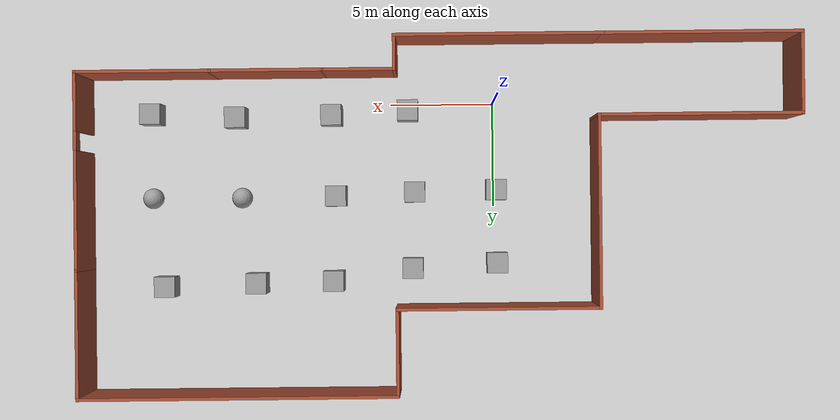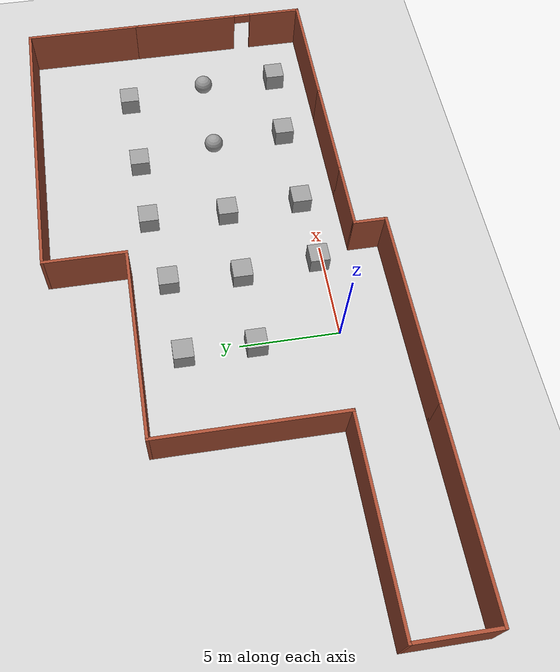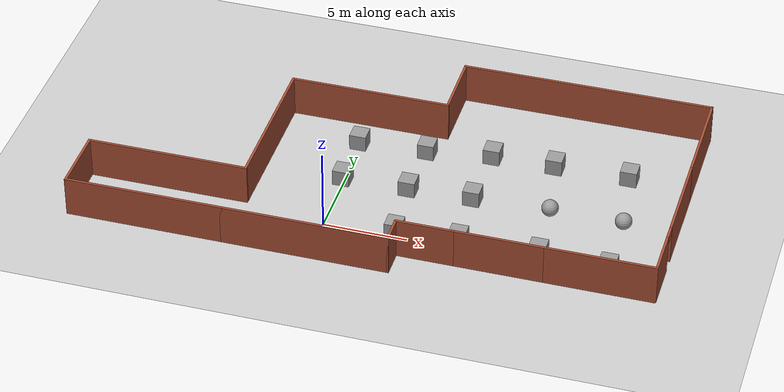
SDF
<sdf version="1.7">
 <world name="default">
  <light name="sun" type="directional">
   <pose>0 0 10 0 -0 0</pose>
   <diffuse>0.8 0.8 0.8 1</diffuse>
   <specular>0.2 0.2 0.2 1</specular>
   <attenuation>
    <range>1000</range>
    <constant>0.9</constant>
    <linear>0.01</linear>
    <quadratic>0.001</quadratic>
   </attenuation>
   <direction>-0.5 0.1 -0.9</direction>
   <spot><inner_angle>0</inner_angle><outer_angle>0</outer_angle><falloff>0</falloff></spot>
  </light>
  <model name="ground_plane">
   <static>1</static>
   <link name="link">
    <collision name="collision">
     <geometry><plane><normal>0 0 1</normal><size>100 100</size></plane></geometry>
     <surface>
      <contact><collide_bitmask>65535</collide_bitmask></contact>
      <friction><ode><mu>100</mu><mu2>50</mu2></ode></friction>
     </surface>
    </collision>
    <visual name="visual">
     <cast_shadows>0</cast_shadows>
     <geometry><plane><normal>0 0 1</normal><size>100 100</size></plane></geometry>
     <material>
      <script><uri>file://media/materials/scripts/gazebo.material</uri><name>Gazebo/Grey</name></script>
     </material>
    </visual>
   </link>
  </model>
  <physics type="ode">
   <max_step_size>0.01</max_step_size>
   <real_time_factor>1</real_time_factor>
   <real_time_update_rate>100</real_time_update_rate>
  </physics>
  <gravity>0 0 -9.8</gravity>
  <magnetic_field>6e-06 2.3e-05 -4.2e-05</magnetic_field>
  <atmosphere type="adiabatic"/>
  <scene><ambient>0.4 0.4 0.4 1</ambient><background>0.7 0.7 0.7 1</background><shadows>1</shadows></scene>
  <spherical_coordinates>
   <surface_model>EARTH_WGS84</surface_model>
   <latitude_deg>0</latitude_deg>
   <longitude_deg>0</longitude_deg>
   <elevation>0</elevation>
   <heading_deg>0</heading_deg>
  </spherical_coordinates>
  <model name="Untitled">
   <pose>2.6395 5.445 0 0 -0 0</pose>
   <link name="Wall_0">
    <collision name="Wall_0_Collision">
     <geometry><box><size>10 0.15 2.5</size></box></geometry>
     <pose>0 0 1.25 0 -0 0</pose>
    </collision>
    <visual name="Wall_0_Visual">
     <pose>0 0 1.25 0 -0 0</pose>
     <geometry><box><size>10 0.15 2.5</size></box></geometry>
     <material>
      <script><uri>file://media/materials/scripts/gazebo.material</uri><name>Gazebo/Bricks</name></script>
      <ambient>1 1 1 1</ambient>
     </material>
     <meta><layer>0</layer></meta>
    </visual>
    <pose>-2.825 -8.525 0 0 -0 0</pose>
   </link>
   <link name="Wall_1">
    <collision name="Wall_1_Collision">
     <geometry><box><size>1.75 0.15 2.5</size></box></geometry>
     <pose>0 0 1.25 0 -0 0</pose>
    </collision>
    <visual name="Wall_1_Visual">
     <pose>0 0 1.25 0 -0 0</pose>
     <geometry><box><size>1.75 0.15 2.5</size></box></geometry>
     <material>
      <script><uri>file://media/materials/scripts/gazebo.material</uri><name>Gazebo/Bricks</name></script>
      <ambient>1 1 1 1</ambient>
     </material>
     <meta><layer>0</layer></meta>
    </visual>
    <pose>2.1 -7.725 0 0 -0 1.5708</pose>
   </link>
   <link name="Wall_10">
    <collision name="Wall_10_Collision">
     <geometry><box><size>9.25 0.15 2.5</size></box></geometry>
     <pose>0 0 1.25 0 -0 0</pose>
    </collision>
    <visual name="Wall_10_Visual">
     <pose>0 0 1.25 0 -0 0</pose>
     <geometry><box><size>9.25 0.15 2.5</size></box></geometry>
     <material>
      <script><uri>file://media/materials/scripts/gazebo.material</uri><name>Gazebo/Bricks</name></script>
      <ambient>1 1 1 1</ambient>
     </material>
     <meta><layer>0</layer></meta>
    </visual>
    <pose>-7.55 -0.125 0 0 -0 -1.5708</pose>
   </link>
   <link name="Wall_11">
    <collision name="Wall_11_Collision">
     <geometry><box><size>9.75 0.15 2.5</size></box></geometry>
     <pose>0 0 1.25 0 -0 0</pose>
    </collision>
    <visual name="Wall_11_Visual">
     <pose>0 0 1.25 0 -0 0</pose>
     <geometry><box><size>9.75 0.15 2.5</size></box></geometry>
     <material>
      <script><uri>file://media/materials/scripts/gazebo.material</uri><name>Gazebo/Bricks</name></script>
      <ambient>1 1 1 1</ambient>
     </material>
     <meta><layer>0</layer></meta>
    </visual>
    <pose>-12.35 -4.675 0 0 -0 3.14159</pose>
   </link>
   <link name="Wall_13">
    <collision name="Wall_13_Collision">
     <geometry><box><size>4 0.15 2.5</size></box></geometry>
     <pose>0 0 1.25 0 -0 0</pose>
    </collision>
    <visual name="Wall_13_Visual">
     <pose>0 0 1.25 0 -0 0</pose>
     <geometry><box><size>4 0.15 2.5</size></box></geometry>
     <material>
      <script><uri>file://media/materials/scripts/gazebo.material</uri><name>Gazebo/Bricks</name></script>
      <ambient>1 1 1 1</ambient>
     </material>
     <meta><layer>0</layer></meta>
    </visual>
    <pose>-17.15 -6.6 0 0 -0 -1.5708</pose>
   </link>
   <link name="Wall_14">
    <collision name="Wall_14_Collision">
     <geometry><box><size>9.55 0.15 2.5</size></box></geometry>
     <pose>0 0 1.25 0 -0 0</pose>
    </collision>
    <visual name="Wall_14_Visual">
     <pose>0 0 1.25 0 -0 0</pose>
     <geometry><box><size>9.55 0.15 2.5</size></box></geometry>
     <material>
      <script><uri>file://media/materials/scripts/gazebo.material</uri><name>Gazebo/Bricks</name></script>
      <ambient>1 1 1 1</ambient>
     </material>
     <meta><layer>0</layer></meta>
    </visual>
    <pose>-12.45 -8.525 0 0 -0 0</pose>
   </link>
   <link name="Wall_2">
    <collision name="Wall_2_Collision">
     <geometry><box><size>3.5 0.15 2.5</size></box></geometry>
     <pose>0 0 1.25 0 -0 0</pose>
    </collision>
    <visual name="Wall_2_Visual">
     <pose>0 0 1.25 0 -0 0</pose>
     <geometry><box><size>3.5 0.15 2.5</size></box></geometry>
     <material>
      <script><uri>file://media/materials/scripts/gazebo.material</uri><name>Gazebo/Bricks</name></script>
      <ambient>1 1 1 1</ambient>
     </material>
     <meta><layer>0</layer></meta>
    </visual>
    <pose>3.775 -6.925 0 0 -0 0</pose>
   </link>
   <link name="Wall_3">
    <collision name="Wall_3_Collision">
     <geometry><box><size>5.5 0.15 2.5</size></box></geometry>
     <pose>0 0 1.25 0 -0 0</pose>
    </collision>
    <visual name="Wall_3_Visual">
     <pose>0 0 1.25 0 -0 0</pose>
     <geometry><box><size>5.5 0.15 2.5</size></box></geometry>
     <material>
      <script><uri>file://media/materials/scripts/gazebo.material</uri><name>Gazebo/Bricks</name></script>
      <ambient>1 1 1 1</ambient>
     </material>
     <meta><layer>0</layer></meta>
    </visual>
    <pose>8.125 -6.925 0 0 -0 0</pose>
   </link>
   <link name="Wall_4">
    <collision name="Wall_4_Collision">
     <geometry><box><size>6.5 0.15 2.5</size></box></geometry>
     <pose>0 0 1.25 0 -0 0</pose>
    </collision>
    <visual name="Wall_4_Visual">
     <pose>0 0 1.25 0 -0 0</pose>
     <geometry><box><size>6.5 0.15 2.5</size></box></geometry>
     <material>
      <script><uri>file://media/materials/scripts/gazebo.material</uri><name>Gazebo/Bricks</name></script>
      <ambient>1 1 1 1</ambient>
     </material>
     <meta><layer>0</layer></meta>
    </visual>
    <pose>13.975 -6.925 0 0 -0 0</pose>
   </link>
   <link name="Wall_5">
    <pose>17.15 -2.25 0 0 -0 1.5708</pose>
    <visual name="Wall_5_Visual_0">
     <pose>-3.31512 0 1.25 0 -0 0</pose>
     <geometry><box><size>2.86977 0.15 2.5</size></box></geometry>
     <material>
      <script><uri>file://media/materials/scripts/gazebo.material</uri><name>Gazebo/Bricks</name></script>
      <ambient>1 1 1 1</ambient>
     </material>
     <meta><layer>0</layer></meta>
    </visual>
    <collision name="Wall_5_Collision_0">
     <geometry><box><size>2.86977 0.15 2.5</size></box></geometry>
     <pose>-3.31512 0 1.25 0 -0 0</pose>
    </collision>
    <visual name="Wall_5_Visual_1">
     <pose>1.88488 0 1.25 0 -0 0</pose>
     <geometry><box><size>5.73024 0.15 2.5</size></box></geometry>
     <material>
      <script><uri>file://media/materials/scripts/gazebo.material</uri><name>Gazebo/Bricks</name></script>
      <ambient>1 1 1 1</ambient>
     </material>
     <meta><layer>0</layer></meta>
    </visual>
    <collision name="Wall_5_Collision_1">
     <geometry><box><size>5.73024 0.15 2.5</size></box></geometry>
     <pose>1.88488 0 1.25 0 -0 0</pose>
    </collision>
    <visual name="Wall_5_Visual_2">
     <pose>-1.43023 0 2.25 0 -0 0</pose>
     <geometry><box><size>0.9 0.15 0.5</size></box></geometry>
     <material>
      <script><uri>file://media/materials/scripts/gazebo.material</uri><name>Gazebo/Bricks</name></script>
      <ambient>1 1 1 1</ambient>
     </material>
     <meta><layer>0</layer></meta>
    </visual>
    <collision name="Wall_5_Collision_2">
     <geometry><box><size>0.9 0.15 0.5</size></box></geometry>
     <pose>-1.43023 0 2.25 0 -0 0</pose>
    </collision>
   </link>
   <link name="Wall_6">
    <collision name="Wall_6_Collision">
     <geometry><box><size>6.25 0.15 2.5</size></box></geometry>
     <pose>0 0 1.25 0 -0 0</pose>
    </collision>
    <visual name="Wall_6_Visual">
     <pose>0 0 1.25 0 -0 0</pose>
     <geometry><box><size>6.25 0.15 2.5</size></box></geometry>
     <material>
      <script><uri>file://media/materials/scripts/gazebo.material</uri><name>Gazebo/Bricks</name></script>
      <ambient>1 1 1 1</ambient>
     </material>
     <meta><layer>0</layer></meta>
    </visual>
    <pose>17.15 5.475 0 0 -0 1.5708</pose>
   </link>
   <link name="Wall_7">
    <collision name="Wall_7_Collision">
     <geometry><box><size>15.25 0.15 2.5</size></box></geometry>
     <pose>0 0 1.25 0 -0 0</pose>
    </collision>
    <visual name="Wall_7_Visual">
     <pose>0 0 1.25 0 -0 0</pose>
     <geometry><box><size>15.25 0.15 2.5</size></box></geometry>
     <material>
      <script><uri>file://media/materials/scripts/gazebo.material</uri><name>Gazebo/Bricks</name></script>
      <ambient>1 1 1 1</ambient>
     </material>
     <meta><layer>0</layer></meta>
    </visual>
    <pose>9.6 8.525 0 0 -0 3.14159</pose>
   </link>
   <link name="Wall_8">
    <collision name="Wall_8_Collision">
     <geometry><box><size>4.25 0.15 2.5</size></box></geometry>
     <pose>0 0 1.25 0 -0 0</pose>
    </collision>
    <visual name="Wall_8_Visual">
     <pose>0 0 1.25 0 -0 0</pose>
     <geometry><box><size>4.25 0.15 2.5</size></box></geometry>
     <material>
      <script><uri>file://media/materials/scripts/gazebo.material</uri><name>Gazebo/Bricks</name></script>
      <ambient>1 1 1 1</ambient>
     </material>
     <meta><layer>0</layer></meta>
    </visual>
    <pose>2.05 6.475 0 0 -0 -1.5708</pose>
   </link>
   <link name="Wall_9">
    <collision name="Wall_9_Collision">
     <geometry><box><size>9.75 0.15 2.5</size></box></geometry>
     <pose>0 0 1.25 0 -0 0</pose>
    </collision>
    <visual name="Wall_9_Visual">
     <pose>0 0 1.25 0 -0 0</pose>
     <geometry><box><size>9.75 0.15 2.5</size></box></geometry>
     <material>
      <script><uri>file://media/materials/scripts/gazebo.material</uri><name>Gazebo/Bricks</name></script>
      <ambient>1 1 1 1</ambient>
     </material>
     <meta><layer>0</layer></meta>
    </visual>
    <pose>-2.75 4.425 0 0 -0 3.14159</pose>
   </link>
   <static>1</static>
  </model>
  <model name="unit_box">
   <pose>7.83645 8.59797 0.5 0 -0 0</pose>
   <link name="link">
    <inertial>
     <mass>1</mass>
     <inertia>
      <ixx>0.166667</ixx>
      <ixy>0</ixy>
      <ixz>0</ixz>
      <iyy>0.166667</iyy>
      <iyz>0</iyz>
      <izz>0.166667</izz>
     </inertia>
    </inertial>
    <collision name="collision"><geometry><box><size>1 1 1</size></box></geometry></collision>
    <visual name="visual">
     <geometry><box><size>1 1 1</size></box></geometry>
     <material>
      <script><name>Gazebo/Grey</name><uri>file://media/materials/scripts/gazebo.material</uri></script>
     </material>
    </visual>
   </link>
  </model>
  <model name="unit_box_0">
   <pose>11.6018 8.67437 0.5 0 -0 0</pose>
   <link name="link">
    <inertial>
     <mass>1</mass>
     <inertia>
      <ixx>0.166667</ixx>
      <ixy>0</ixy>
      <ixz>0</ixz>
      <iyy>0.166667</iyy>
      <iyz>0</iyz>
      <izz>0.166667</izz>
     </inertia>
    </inertial>
    <collision name="collision"><geometry><box><size>1 1 1</size></box></geometry></collision>
    <visual name="visual">
     <geometry><box><size>1 1 1</size></box></geometry>
     <material>
      <script><name>Gazebo/Grey</name><uri>file://media/materials/scripts/gazebo.material</uri></script>
     </material>
    </visual>
   </link>
  </model>
  <model name="unit_box_1">
   <pose>16.0596 8.80254 0.5 0 -0 0</pose>
   <link name="link">
    <inertial>
     <mass>1</mass>
     <inertia>
      <ixx>0.166667</ixx>
      <ixy>0</ixy>
      <ixz>0</ixz>
      <iyy>0.166667</iyy>
      <iyz>0</iyz>
      <izz>0.166667</izz>
     </inertia>
    </inertial>
    <collision name="collision"><geometry><box><size>1 1 1</size></box></geometry></collision>
    <visual name="visual">
     <geometry><box><size>1 1 1</size></box></geometry>
     <material>
      <script><name>Gazebo/Grey</name><uri>file://media/materials/scripts/gazebo.material</uri></script>
     </material>
    </visual>
   </link>
  </model>
  <model name="unit_box_2">
   <pose>7.69509 4.44937 0.5 0 -0 0</pose>
   <link name="link">
    <inertial>
     <mass>1</mass>
     <inertia>
      <ixx>0.166667</ixx>
      <ixy>0</ixy>
      <ixz>0</ixz>
      <iyy>0.166667</iyy>
      <iyz>0</iyz>
      <izz>0.166667</izz>
     </inertia>
    </inertial>
    <collision name="collision"><geometry><box><size>1 1 1</size></box></geometry></collision>
    <visual name="visual">
     <geometry><box><size>1 1 1</size></box></geometry>
     <material>
      <script><name>Gazebo/Grey</name><uri>file://media/materials/scripts/gazebo.material</uri></script>
     </material>
    </visual>
   </link>
  </model>
  <model name="unit_box_3">
   <pose>3.85431 4.28927 0.5 0 -0 0</pose>
   <link name="link">
    <inertial>
     <mass>1</mass>
     <inertia>
      <ixx>0.166667</ixx>
      <ixy>0</ixy>
      <ixz>0</ixz>
      <iyy>0.166667</iyy>
      <iyz>0</iyz>
      <izz>0.166667</izz>
     </inertia>
    </inertial>
    <collision name="collision"><geometry><box><size>1 1 1</size></box></geometry></collision>
    <visual name="visual">
     <geometry><box><size>1 1 1</size></box></geometry>
     <material>
      <script><name>Gazebo/Grey</name><uri>file://media/materials/scripts/gazebo.material</uri></script>
     </material>
    </visual>
   </link>
  </model>
  <model name="unit_sphere">
   <pose>12.3078 4.49838 0.5 0 -0 0</pose>
   <link name="link">
    <inertial>
     <mass>1</mass>
     <inertia><ixx>0.1</ixx><ixy>0</ixy><ixz>0</ixz><iyy>0.1</iyy><iyz>0</iyz><izz>0.1</izz></inertia>
    </inertial>
    <collision name="collision"><geometry><sphere><radius>0.5</radius></sphere></geometry></collision>
    <visual name="visual">
     <geometry><sphere><radius>0.5</radius></sphere></geometry>
     <material>
      <script><name>Gazebo/Grey</name><uri>file://media/materials/scripts/gazebo.material</uri></script>
     </material>
    </visual>
   </link>
  </model>
  <model name="unit_sphere_0">
   <pose>16.66 4.48683 0.5 0 -0 0</pose>
   <link name="link">
    <inertial>
     <mass>1</mass>
     <inertia><ixx>0.1</ixx><ixy>0</ixy><ixz>0</ixz><iyy>0.1</iyy><iyz>0</iyz><izz>0.1</izz></inertia>
    </inertial>
    <collision name="collision"><geometry><sphere><radius>0.5</radius></sphere></geometry></collision>
    <visual name="visual">
     <geometry><sphere><radius>0.5</radius></sphere></geometry>
     <material>
      <script><name>Gazebo/Grey</name><uri>file://media/materials/scripts/gazebo.material</uri></script>
     </material>
    </visual>
   </link>
  </model>
  <model name="unit_box_4">
   <pose>16.6919 0.373603 0.5 0 -0 0</pose>
   <link name="link">
    <inertial>
     <mass>1</mass>
     <inertia>
      <ixx>0.166667</ixx>
      <ixy>0</ixy>
      <ixz>0</ixz>
      <iyy>0.166667</iyy>
      <iyz>0</iyz>
      <izz>0.166667</izz>
     </inertia>
    </inertial>
    <collision name="collision"><geometry><box><size>1 1 1</size></box></geometry></collision>
    <visual name="visual">
     <geometry><box><size>1 1 1</size></box></geometry>
     <material>
      <script><name>Gazebo/Grey</name><uri>file://media/materials/scripts/gazebo.material</uri></script>
     </material>
    </visual>
   </link>
  </model>
  <model name="unit_box_5">
   <pose>12.5777 0.572992 0.5 0 -0 0</pose>
   <link name="link">
    <inertial>
     <mass>1</mass>
     <inertia>
      <ixx>0.166667</ixx>
      <ixy>0</ixy>
      <ixz>0</ixz>
      <iyy>0.166667</iyy>
      <iyz>0</iyz>
      <izz>0.166667</izz>
     </inertia>
    </inertial>
    <collision name="collision"><geometry><box><size>1 1 1</size></box></geometry></collision>
    <visual name="visual">
     <geometry><box><size>1 1 1</size></box></geometry>
     <material>
      <script><name>Gazebo/Grey</name><uri>file://media/materials/scripts/gazebo.material</uri></script>
     </material>
    </visual>
   </link>
  </model>
  <model name="unit_box_6">
   <pose>7.89365 0.499354 0.5 0 -0 0</pose>
   <link name="link">
    <inertial>
     <mass>1</mass>
     <inertia>
      <ixx>0.166667</ixx>
      <ixy>0</ixy>
      <ixz>0</ixz>
      <iyy>0.166667</iyy>
      <iyz>0</iyz>
      <izz>0.166667</izz>
     </inertia>
    </inertial>
    <collision name="collision"><geometry><box><size>1 1 1</size></box></geometry></collision>
    <visual name="visual">
     <geometry><box><size>1 1 1</size></box></geometry>
     <material>
      <script><name>Gazebo/Grey</name><uri>file://media/materials/scripts/gazebo.material</uri></script>
     </material>
    </visual>
   </link>
  </model>
  <model name="unit_box_7">
   <pose>-0.112689 4.21838 0.5 0 -0 0</pose>
   <link name="link">
    <inertial>
     <mass>1</mass>
     <inertia>
      <ixx>0.166667</ixx>
      <ixy>0</ixy>
      <ixz>0</ixz>
      <iyy>0.166667</iyy>
      <iyz>0</iyz>
      <izz>0.166667</izz>
     </inertia>
    </inertial>
    <collision name="collision"><geometry><box><size>1 1 1</size></box></geometry></collision>
    <visual name="visual">
     <geometry><box><size>1 1 1</size></box></geometry>
     <material>
      <script><name>Gazebo/Grey</name><uri>file://media/materials/scripts/gazebo.material</uri></script>
     </material>
    </visual>
   </link>
  </model>
  <model name="unit_box_8">
   <pose>3.96651 8.01065 0.5 0 -0 0</pose>
   <link name="link">
    <inertial>
     <mass>1</mass>
     <inertia>
      <ixx>0.166667</ixx>
      <ixy>0</ixy>
      <ixz>0</ixz>
      <iyy>0.166667</iyy>
      <iyz>0</iyz>
      <izz>0.166667</izz>
     </inertia>
    </inertial>
    <collision name="collision"><geometry><box><size>1 1 1</size></box></geometry></collision>
    <visual name="visual">
     <geometry><box><size>1 1 1</size></box></geometry>
     <material>
      <script><name>Gazebo/Grey</name><uri>file://media/materials/scripts/gazebo.material</uri></script>
     </material>
    </visual>
   </link>
  </model>
  <model name="unit_box_9">
   <pose>-0.144061 7.78303 0.5 0 -0 0</pose>
   <link name="link">
    <inertial>
     <mass>1</mass>
     <inertia>
      <ixx>0.166667</ixx>
      <ixy>0</ixy>
      <ixz>0</ixz>
      <iyy>0.166667</iyy>
      <iyz>0</iyz>
      <izz>0.166667</izz>
     </inertia>
    </inertial>
    <collision name="collision"><geometry><box><size>1 1 1</size></box></geometry></collision>
    <visual name="visual">
     <geometry><box><size>1 1 1</size></box></geometry>
     <material>
      <script><name>Gazebo/Grey</name><uri>file://media/materials/scripts/gazebo.material</uri></script>
     </material>
    </visual>
   </link>
  </model>
  <model name="unit_box_10">
   <pose>4.17059 0.299996 0.5 0 -0 0</pose>
   <link name="link">
    <inertial>
     <mass>1</mass>
     <inertia>
      <ixx>0.166667</ixx>
      <ixy>0</ixy>
      <ixz>0</ixz>
      <iyy>0.166667</iyy>
      <iyz>0</iyz>
      <izz>0.166667</izz>
     </inertia>
    </inertial>
    <collision name="collision"><geometry><box><size>1 1 1</size></box></geometry></collision>
    <visual name="visual">
     <geometry><box><size>1 1 1</size></box></geometry>
     <material>
      <script><name>Gazebo/Grey</name><uri>file://media/materials/scripts/gazebo.material</uri></script>
     </material>
    </visual>
   </link>
  </model>
 </world>
</sdf>
